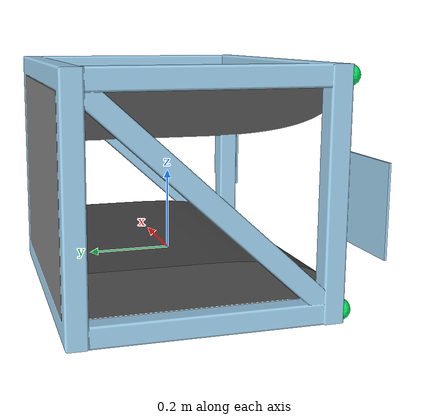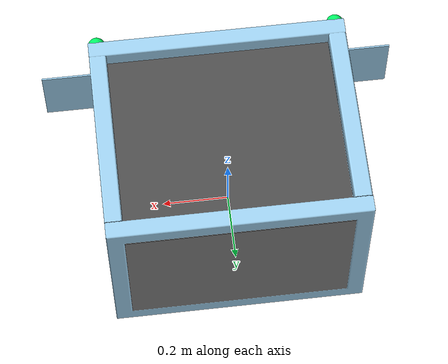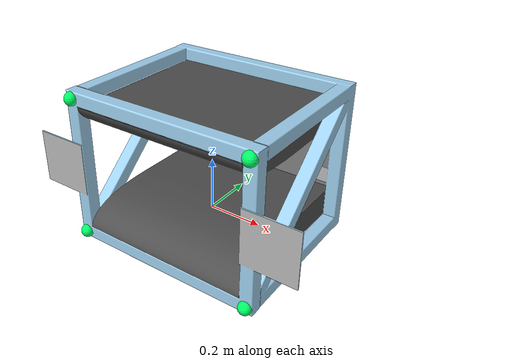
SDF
<?xml version="1.0"?>
<sdf version="1.6">
  <model name="docking_station">
    <link name="link">
      <visual name="visual">
        <geometry>
          <mesh>
            <uri>model://docking_station/meshes/dock_station.dae</uri>
          </mesh>
        </geometry>
      </visual>
      <collision name="collision">
        <geometry>
          <mesh>
            <uri>model://docking_station/meshes/dock_station.dae</uri>
          </mesh>
        </geometry>
        <surface>
          <friction>
            <ode>
              <mu>0.01</mu>
              <mu2>0.01</mu2>
            </ode>
          </friction>
        </surface>
      </collision>
    </link>

    <link name="led_top_left">
      <pose>-0.35 -0.31 0.455 0 0 0</pose>
      <visual name="visual">
        <geometry>
          <sphere>
            <radius>0.025</radius>
          </sphere>
        </geometry>
        <material>
          <ambient>0 1 0.4 1</ambient>
          <diffuse>0 1 0.4 1</diffuse>
          <emissive>0 1 0.4 1</emissive>
        </material>
      </visual>
    </link>

    <link name="led_top_right">
      <pose>0.35 -0.31 0.455 0 0 0</pose>
      <visual name="visual">
        <geometry>
          <sphere>
            <radius>0.025</radius>
          </sphere>
        </geometry>
        <material>
          <ambient>0 1 0.4 1</ambient>
          <diffuse>0 1 0.4 1</diffuse>
          <emissive>0 1 0.4 1</emissive>
        </material>
      </visual>
    </link>

    <link name="led_bottom_left">
      <pose>-0.35 -0.31 -0.075 0 0 0</pose>
      <visual name="visual">
        <geometry>
          <sphere>
            <radius>0.025</radius>
          </sphere>
        </geometry>
        <material>
          <ambient>0 1 0.4 1</ambient>
          <diffuse>0 1 0.4 1</diffuse>
          <emissive>0 1 0.4 1</emissive>
        </material>
      </visual>
    </link>

    <link name="led_bottom_right">
      <pose>0.35 -0.31 -0.075 0 0 0</pose>
      <visual name="visual">
        <geometry>
          <sphere>
            <radius>0.025</radius>
          </sphere>
        </geometry>
        <material>
          <ambient>0 1 0.4 1</ambient>
          <diffuse>0 1 0.4 1</diffuse>
          <emissive>0 1 0.4 1</emissive>
        </material>
      </visual>
    </link>

    <plugin filename="DockSway" name="dock::DockSway">
      <enabled>true</enabled>
      <period>4.0</period>
      <heave_amplitude>0.1</heave_amplitude>
      <heave_phase>0.0</heave_phase>
      <sway_amplitude>0.1</sway_amplitude>
      <sway_phase>1.5708</sway_phase>
    </plugin>

    <plugin filename="gz-sim-pose-publisher-system"
      name="gz::sim::systems::PosePublisher">
      <publish_model_pose>true</publish_model_pose>
      <publish_link_pose>false</publish_link_pose>
      <update_frequency>50</update_frequency>
    </plugin>

  </model>
</sdf>
